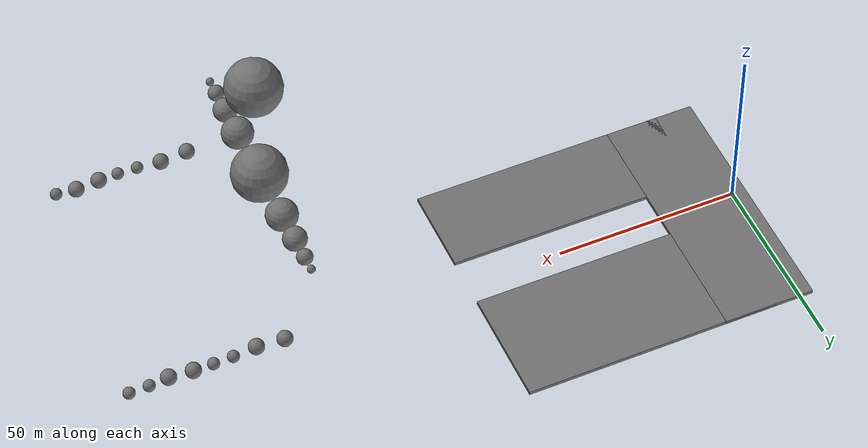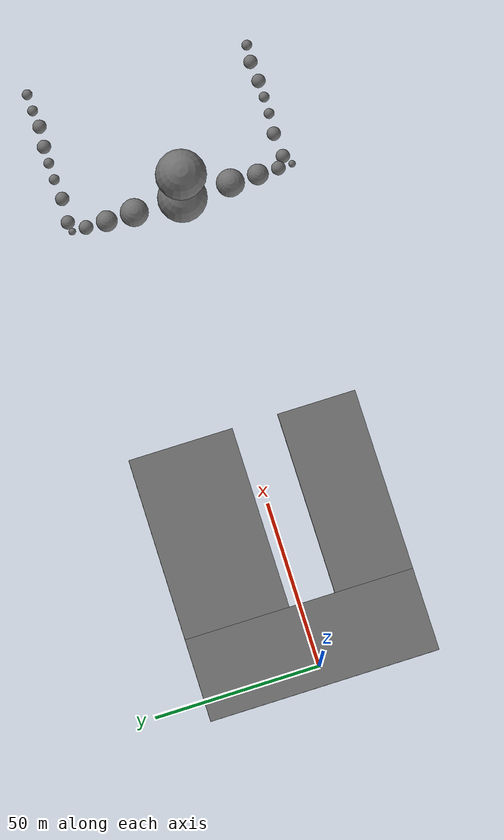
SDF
<sdf version="1.10">
 <world name="waterworld">
  <model name="hidden_level_1-1">
   <static>true</static>
   <link name="link">
    <pose>7 0 -4 0 0 0</pose>
    <collision name="col"><geometry><box><size>25 70 1</size></box></geometry></collision>
    <visual name="vis">
     <geometry><box><size>25 70 1</size></box></geometry>
     <material>
      <ambient>0.35 0.35 0.35 1</ambient>
      <diffuse>0.45 0.45 0.45 1</diffuse>
      <pbr>
       <metal>
        <albedo_map>model://textures/stone_textures/stone_wall_seamless_1x1.jpg</albedo_map>
        <roughness>0.9</roughness>
        <metalness>0.0</metalness>
       </metal>
      </pbr>
     </material>
    </visual>
   </link>
  </model>
  <model name="hidden_level_1-2">
   <static>true</static>
   <link name="link">
    <pose>40 19 -4 0 0 0</pose>
    <collision name="col"><geometry><box><size>70 32 1</size></box></geometry></collision>
    <visual name="vis">
     <geometry><box><size>70 32 1</size></box></geometry>
     <material>
      <ambient>0.35 0.35 0.35 1</ambient>
      <diffuse>0.45 0.45 0.45 1</diffuse>
      <pbr>
       <metal>
        <albedo_map>model://textures/stone_textures/stone_wall_seamless_1x1.jpg</albedo_map>
        <roughness>0.9</roughness>
        <metalness>0.0</metalness>
       </metal>
      </pbr>
     </material>
    </visual>
   </link>
  </model>
  <model name="hidden_level_1-3">
   <static>true</static>
   <link name="link">
    <pose>40 -23 -4 0 0 0</pose>
    <collision name="col"><geometry><box><size>70 24 1</size></box></geometry></collision>
    <visual name="vis">
     <geometry><box><size>70 24 1</size></box></geometry>
     <material>
      <ambient>0.35 0.35 0.35 1</ambient>
      <diffuse>0.45 0.45 0.45 1</diffuse>
      <pbr>
       <metal>
        <albedo_map>model://textures/stone_textures/stone_wall_seamless_1x1.jpg</albedo_map>
        <roughness>0.9</roughness>
        <metalness>0.0</metalness>
       </metal>
      </pbr>
     </material>
    </visual>
   </link>
  </model>
  <model name="falling_sphere_1">
   <static>false</static>
   <link name="link">
    <pose>130.5 32 70 0 0 3.145</pose>
    <collision name="col"><geometry><sphere><radius>1</radius></sphere></geometry></collision>
    <visual name="vis">
     <geometry><sphere><radius>1</radius></sphere></geometry>
     <material>
      <ambient>0.35 0.35 0.35 1</ambient>
      <diffuse>0.45 0.45 0.45 1</diffuse>
      <pbr>
       <metal>
        <albedo_map>model://textures/stone_textures/stone_wall_seamless_1x1.jpg</albedo_map>
        <roughness>0.9</roughness>
        <metalness>0.0</metalness>
       </metal>
      </pbr>
     </material>
    </visual>
   </link>
  </model>
  <model name="falling_sphere_2">
   <static>false</static>
   <link name="link">
    <pose>130.5 28 70 0 0 3.145</pose>
    <collision name="col"><geometry><sphere><radius>2</radius></sphere></geometry></collision>
    <visual name="vis">
     <geometry><sphere><radius>2</radius></sphere></geometry>
     <material>
      <ambient>0.35 0.35 0.35 1</ambient>
      <diffuse>0.45 0.45 0.45 1</diffuse>
      <pbr>
       <metal>
        <albedo_map>model://textures/stone_textures/stone_wall_seamless_1x1.jpg</albedo_map>
        <roughness>0.9</roughness>
        <metalness>0.0</metalness>
       </metal>
      </pbr>
     </material>
    </visual>
   </link>
  </model>
  <model name="falling_sphere_3">
   <static>false</static>
   <link name="link">
    <pose>130.5 22 70 0 0 3.145</pose>
    <collision name="col"><geometry><sphere><radius>3</radius></sphere></geometry></collision>
    <visual name="vis">
     <geometry><sphere><radius>3</radius></sphere></geometry>
     <material>
      <ambient>0.35 0.35 0.35 1</ambient>
      <diffuse>0.45 0.45 0.45 1</diffuse>
      <pbr>
       <metal>
        <albedo_map>model://textures/stone_textures/stone_wall_seamless_1x1.jpg</albedo_map>
        <roughness>0.9</roughness>
        <metalness>0.0</metalness>
       </metal>
      </pbr>
     </material>
    </visual>
   </link>
  </model>
  <model name="falling_sphere_4">
   <static>false</static>
   <link name="link">
    <pose>130.5 14 70 0 0 3.145</pose>
    <collision name="col"><geometry><sphere><radius>4</radius></sphere></geometry></collision>
    <visual name="vis">
     <geometry><sphere><radius>4</radius></sphere></geometry>
     <material>
      <ambient>0.35 0.35 0.35 1</ambient>
      <diffuse>0.45 0.45 0.45 1</diffuse>
      <pbr>
       <metal>
        <albedo_map>model://textures/stone_textures/stone_wall_seamless_1x1.jpg</albedo_map>
        <roughness>0.9</roughness>
        <metalness>0.0</metalness>
       </metal>
      </pbr>
     </material>
    </visual>
   </link>
  </model>
  <model name="falling_sphere_5">
   <static>false</static>
   <link name="link">
    <pose>130.5 0 70 0 0 3.145</pose>
    <collision name="col"><geometry><sphere><radius>7</radius></sphere></geometry></collision>
    <visual name="vis">
     <geometry><sphere><radius>7</radius></sphere></geometry>
     <material>
      <ambient>0.35 0.35 0.35 1</ambient>
      <diffuse>0.45 0.45 0.45 1</diffuse>
      <pbr>
       <metal>
        <albedo_map>model://textures/stone_textures/stone_wall_seamless_1x1.jpg</albedo_map>
        <roughness>0.9</roughness>
        <metalness>0.0</metalness>
       </metal>
      </pbr>
     </material>
    </visual>
   </link>
  </model>
  <model name="falling_sphere_6">
   <static>false</static>
   <link name="link">
    <pose>130.5 -14 70 0 0 3.145</pose>
    <collision name="col"><geometry><sphere><radius>4</radius></sphere></geometry></collision>
    <visual name="vis">
     <geometry><sphere><radius>4</radius></sphere></geometry>
     <material>
      <ambient>0.35 0.35 0.35 1</ambient>
      <diffuse>0.45 0.45 0.45 1</diffuse>
      <pbr>
       <metal>
        <albedo_map>model://textures/stone_textures/stone_wall_seamless_1x1.jpg</albedo_map>
        <roughness>0.9</roughness>
        <metalness>0.0</metalness>
       </metal>
      </pbr>
     </material>
    </visual>
   </link>
  </model>
  <model name="falling_sphere_7">
   <static>false</static>
   <link name="link">
    <pose>130.5 -22 70 0 0 3.145</pose>
    <collision name="col"><geometry><sphere><radius>3</radius></sphere></geometry></collision>
    <visual name="vis">
     <geometry><sphere><radius>3</radius></sphere></geometry>
     <material>
      <ambient>0.35 0.35 0.35 1</ambient>
      <diffuse>0.45 0.45 0.45 1</diffuse>
      <pbr>
       <metal>
        <albedo_map>model://textures/stone_textures/stone_wall_seamless_1x1.jpg</albedo_map>
        <roughness>0.9</roughness>
        <metalness>0.0</metalness>
       </metal>
      </pbr>
     </material>
    </visual>
   </link>
  </model>
  <model name="falling_sphere_8">
   <static>false</static>
   <link name="link">
    <pose>130.5 -28 70 0 0 3.145</pose>
    <collision name="col"><geometry><sphere><radius>2</radius></sphere></geometry></collision>
    <visual name="vis">
     <geometry><sphere><radius>2</radius></sphere></geometry>
     <material>
      <ambient>0.35 0.35 0.35 1</ambient>
      <diffuse>0.45 0.45 0.45 1</diffuse>
      <pbr>
       <metal>
        <albedo_map>model://textures/stone_textures/stone_wall_seamless_1x1.jpg</albedo_map>
        <roughness>0.9</roughness>
        <metalness>0.0</metalness>
       </metal>
      </pbr>
     </material>
    </visual>
   </link>
  </model>
  <model name="falling_sphere_9">
   <static>false</static>
   <link name="link">
    <pose>130.5 -32 70 0 0 3.145</pose>
    <collision name="col"><geometry><sphere><radius>1</radius></sphere></geometry></collision>
    <visual name="vis">
     <geometry><sphere><radius>1</radius></sphere></geometry>
     <material>
      <ambient>0.35 0.35 0.35 1</ambient>
      <diffuse>0.45 0.45 0.45 1</diffuse>
      <pbr>
       <metal>
        <albedo_map>model://textures/stone_textures/stone_wall_seamless_1x1.jpg</albedo_map>
        <roughness>0.9</roughness>
        <metalness>0.0</metalness>
       </metal>
      </pbr>
     </material>
    </visual>
   </link>
  </model>
  <model name="falling_sphere_10">
   <static>false</static>
   <link name="link">
    <pose>130.5 0 100 0 0 3.145</pose>
    <collision name="col"><geometry><sphere><radius>7</radius></sphere></geometry></collision>
    <visual name="vis">
     <geometry><sphere><radius>7</radius></sphere></geometry>
     <material>
      <ambient>0.35 0.35 0.35 1</ambient>
      <diffuse>0.45 0.45 0.45 1</diffuse>
      <pbr>
       <metal>
        <albedo_map>model://textures/stone_textures/stone_wall_seamless_1x1.jpg</albedo_map>
        <roughness>0.9</roughness>
        <metalness>0.0</metalness>
       </metal>
      </pbr>
     </material>
    </visual>
   </link>
  </model>
  <model name="falling_sphere_11">
   <static>false</static>
   <link name="link">
    <pose>138 32 48 0 0 3.145</pose>
    <collision name="col"><geometry><sphere><radius>2</radius></sphere></geometry></collision>
    <visual name="vis">
     <geometry><sphere><radius>2</radius></sphere></geometry>
     <material>
      <ambient>0.35 0.35 0.35 1</ambient>
      <diffuse>0.45 0.45 0.45 1</diffuse>
      <pbr>
       <metal>
        <albedo_map>model://textures/stone_textures/stone_wall_seamless_1x1.jpg</albedo_map>
        <roughness>0.9</roughness>
        <metalness>0.0</metalness>
       </metal>
      </pbr>
     </material>
    </visual>
   </link>
  </model>
  <model name="falling_sphere_12">
   <static>false</static>
   <link name="link">
    <pose>138 -32 48 0 0 3.145</pose>
    <collision name="col"><geometry><sphere><radius>2</radius></sphere></geometry></collision>
    <visual name="vis">
     <geometry><sphere><radius>2</radius></sphere></geometry>
     <material>
      <ambient>0.35 0.35 0.35 1</ambient>
      <diffuse>0.45 0.45 0.45 1</diffuse>
      <pbr>
       <metal>
        <albedo_map>model://textures/stone_textures/stone_wall_seamless_1x1.jpg</albedo_map>
        <roughness>0.9</roughness>
        <metalness>0.0</metalness>
       </metal>
      </pbr>
     </material>
    </visual>
   </link>
  </model>
  <model name="falling_sphere_13">
   <static>false</static>
   <link name="link">
    <pose>145 31.5 48 0 0 3.145</pose>
    <collision name="col"><geometry><sphere><radius>2</radius></sphere></geometry></collision>
    <visual name="vis">
     <geometry><sphere><radius>2</radius></sphere></geometry>
     <material>
      <ambient>0.35 0.35 0.35 1</ambient>
      <diffuse>0.45 0.45 0.45 1</diffuse>
      <pbr>
       <metal>
        <albedo_map>model://textures/stone_textures/stone_wall_seamless_1x1.jpg</albedo_map>
        <roughness>0.9</roughness>
        <metalness>0.0</metalness>
       </metal>
      </pbr>
     </material>
    </visual>
   </link>
  </model>
  <model name="falling_sphere_14">
   <static>false</static>
   <link name="link">
    <pose>145 -31.5 48 0 0 3.145</pose>
    <collision name="col"><geometry><sphere><radius>2</radius></sphere></geometry></collision>
    <visual name="vis">
     <geometry><sphere><radius>2</radius></sphere></geometry>
     <material>
      <ambient>0.35 0.35 0.35 1</ambient>
      <diffuse>0.45 0.45 0.45 1</diffuse>
      <pbr>
       <metal>
        <albedo_map>model://textures/stone_textures/stone_wall_seamless_1x1.jpg</albedo_map>
        <roughness>0.9</roughness>
        <metalness>0.0</metalness>
       </metal>
      </pbr>
     </material>
    </visual>
   </link>
  </model>
  <model name="falling_sphere_15">
   <static>false</static>
   <link name="link">
    <pose>151 32 48 0 0 3.145</pose>
    <collision name="col"><geometry><sphere><radius>1.5</radius></sphere></geometry></collision>
    <visual name="vis">
     <geometry><sphere><radius>1.5</radius></sphere></geometry>
     <material>
      <ambient>0.35 0.35 0.35 1</ambient>
      <diffuse>0.45 0.45 0.45 1</diffuse>
      <pbr>
       <metal>
        <albedo_map>model://textures/stone_textures/stone_wall_seamless_1x1.jpg</albedo_map>
        <roughness>0.9</roughness>
        <metalness>0.0</metalness>
       </metal>
      </pbr>
     </material>
    </visual>
   </link>
  </model>
  <model name="falling_sphere_16">
   <static>false</static>
   <link name="link">
    <pose>151 -32 48 0 0 3.145</pose>
    <collision name="col"><geometry><sphere><radius>1.5</radius></sphere></geometry></collision>
    <visual name="vis">
     <geometry><sphere><radius>1.5</radius></sphere></geometry>
     <material>
      <ambient>0.35 0.35 0.35 1</ambient>
      <diffuse>0.45 0.45 0.45 1</diffuse>
      <pbr>
       <metal>
        <albedo_map>model://textures/stone_textures/stone_wall_seamless_1x1.jpg</albedo_map>
        <roughness>0.9</roughness>
        <metalness>0.0</metalness>
       </metal>
      </pbr>
     </material>
    </visual>
   </link>
  </model>
  <model name="falling_sphere_17">
   <static>false</static>
   <link name="link">
    <pose>156 32.1 48 0 0 3.145</pose>
    <collision name="col"><geometry><sphere><radius>1.5</radius></sphere></geometry></collision>
    <visual name="vis">
     <geometry><sphere><radius>1.5</radius></sphere></geometry>
     <material>
      <ambient>0.35 0.35 0.35 1</ambient>
      <diffuse>0.45 0.45 0.45 1</diffuse>
      <pbr>
       <metal>
        <albedo_map>model://textures/stone_textures/stone_wall_seamless_1x1.jpg</albedo_map>
        <roughness>0.9</roughness>
        <metalness>0.0</metalness>
       </metal>
      </pbr>
     </material>
    </visual>
   </link>
  </model>
  <model name="falling_sphere_18">
   <static>false</static>
   <link name="link">
    <pose>156 -32.1 48 0 0 3.145</pose>
    <collision name="col"><geometry><sphere><radius>1.5</radius></sphere></geometry></collision>
    <visual name="vis">
     <geometry><sphere><radius>1.5</radius></sphere></geometry>
     <material>
      <ambient>0.35 0.35 0.35 1</ambient>
      <diffuse>0.45 0.45 0.45 1</diffuse>
      <pbr>
       <metal>
        <albedo_map>model://textures/stone_textures/stone_wall_seamless_1x1.jpg</albedo_map>
        <roughness>0.9</roughness>
        <metalness>0.0</metalness>
       </metal>
      </pbr>
     </material>
    </visual>
   </link>
  </model>
  <model name="falling_sphere_19">
   <static>false</static>
   <link name="link">
    <pose>161 32 48 0 0 3.145</pose>
    <collision name="col"><geometry><sphere><radius>2</radius></sphere></geometry></collision>
    <visual name="vis">
     <geometry><sphere><radius>2</radius></sphere></geometry>
     <material>
      <ambient>0.35 0.35 0.35 1</ambient>
      <diffuse>0.45 0.45 0.45 1</diffuse>
      <pbr>
       <metal>
        <albedo_map>model://textures/stone_textures/stone_wall_seamless_1x1.jpg</albedo_map>
        <roughness>0.9</roughness>
        <metalness>0.0</metalness>
       </metal>
      </pbr>
     </material>
    </visual>
   </link>
  </model>
  <model name="falling_sphere_20">
   <static>false</static>
   <link name="link">
    <pose>161 -32 48 0 0 3.145</pose>
    <collision name="col"><geometry><sphere><radius>2</radius></sphere></geometry></collision>
    <visual name="vis">
     <geometry><sphere><radius>2</radius></sphere></geometry>
     <material>
      <ambient>0.35 0.35 0.35 1</ambient>
      <diffuse>0.45 0.45 0.45 1</diffuse>
      <pbr>
       <metal>
        <albedo_map>model://textures/stone_textures/stone_wall_seamless_1x1.jpg</albedo_map>
        <roughness>0.9</roughness>
        <metalness>0.0</metalness>
       </metal>
      </pbr>
     </material>
    </visual>
   </link>
  </model>
  <model name="falling_sphere_21">
   <static>false</static>
   <link name="link">
    <pose>167 31.5 48 0 0 3.145</pose>
    <collision name="col"><geometry><sphere><radius>2</radius></sphere></geometry></collision>
    <visual name="vis">
     <geometry><sphere><radius>2</radius></sphere></geometry>
     <material>
      <ambient>0.35 0.35 0.35 1</ambient>
      <diffuse>0.45 0.45 0.45 1</diffuse>
      <pbr>
       <metal>
        <albedo_map>model://textures/stone_textures/stone_wall_seamless_1x1.jpg</albedo_map>
        <roughness>0.9</roughness>
        <metalness>0.0</metalness>
       </metal>
      </pbr>
     </material>
    </visual>
   </link>
  </model>
  <model name="falling_sphere_22">
   <static>false</static>
   <link name="link">
    <pose>167 -31.5 48 0 0 3.145</pose>
    <collision name="col"><geometry><sphere><radius>2</radius></sphere></geometry></collision>
    <visual name="vis">
     <geometry><sphere><radius>2</radius></sphere></geometry>
     <material>
      <ambient>0.35 0.35 0.35 1</ambient>
      <diffuse>0.45 0.45 0.45 1</diffuse>
      <pbr>
       <metal>
        <albedo_map>model://textures/stone_textures/stone_wall_seamless_1x1.jpg</albedo_map>
        <roughness>0.9</roughness>
        <metalness>0.0</metalness>
       </metal>
      </pbr>
     </material>
    </visual>
   </link>
  </model>
  <model name="falling_sphere_23">
   <static>false</static>
   <link name="link">
    <pose>172 32 48 0 0 3.145</pose>
    <collision name="col"><geometry><sphere><radius>1.5</radius></sphere></geometry></collision>
    <visual name="vis">
     <geometry><sphere><radius>1.5</radius></sphere></geometry>
     <material>
      <ambient>0.35 0.35 0.35 1</ambient>
      <diffuse>0.45 0.45 0.45 1</diffuse>
      <pbr>
       <metal>
        <albedo_map>model://textures/stone_textures/stone_wall_seamless_1x1.jpg</albedo_map>
        <roughness>0.9</roughness>
        <metalness>0.0</metalness>
       </metal>
      </pbr>
     </material>
    </visual>
   </link>
  </model>
  <model name="falling_sphere_24">
   <static>false</static>
   <link name="link">
    <pose>172 -32 48 0 0 3.145</pose>
    <collision name="col"><geometry><sphere><radius>1.5</radius></sphere></geometry></collision>
    <visual name="vis">
     <geometry><sphere><radius>1.5</radius></sphere></geometry>
     <material>
      <ambient>0.35 0.35 0.35 1</ambient>
      <diffuse>0.45 0.45 0.45 1</diffuse>
      <pbr>
       <metal>
        <albedo_map>model://textures/stone_textures/stone_wall_seamless_1x1.jpg</albedo_map>
        <roughness>0.9</roughness>
        <metalness>0.0</metalness>
       </metal>
      </pbr>
     </material>
    </visual>
   </link>
  </model>
  <model name="falling_sphere_25">
   <static>false</static>
   <link name="link">
    <pose>177 32.1 48 0 0 3.145</pose>
    <collision name="col"><geometry><sphere><radius>1.5</radius></sphere></geometry></collision>
    <visual name="vis">
     <geometry><sphere><radius>1.5</radius></sphere></geometry>
     <material>
      <ambient>0.35 0.35 0.35 1</ambient>
      <diffuse>0.45 0.45 0.45 1</diffuse>
      <pbr>
       <metal>
        <albedo_map>model://textures/stone_textures/stone_wall_seamless_1x1.jpg</albedo_map>
        <roughness>0.9</roughness>
        <metalness>0.0</metalness>
       </metal>
      </pbr>
     </material>
    </visual>
   </link>
  </model>
 </world>
</sdf>
